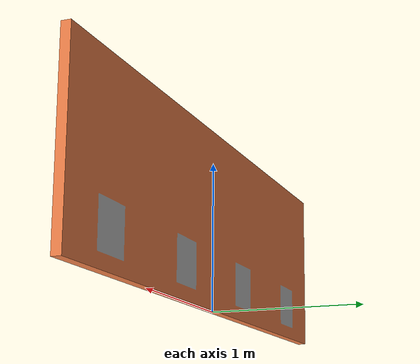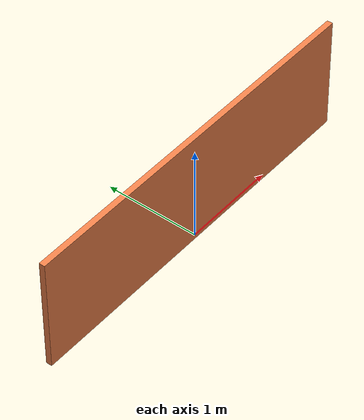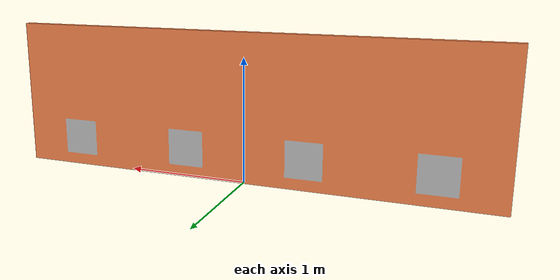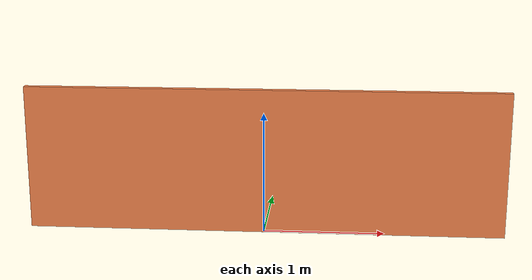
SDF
<?xml version="1.0" ?>
<sdf version="1.5">
<model name="wall">
  <static>true</static>
  <link name="wall_link">

  <visual name="wall">
    <pose>0 0 0 0 0 0</pose>
    <geometry>
      <mesh><uri>model://wall/meshes/wall.dae</uri><scale>1.2 1.2 1.2</scale></mesh>
    </geometry>
  </visual>

  <collision name="wall">
    <pose>0 0 0 0 0 0</pose>
    <geometry>
      <mesh><uri>model://wall/meshes/wall.dae</uri><scale>1.2 1.2 1.2</scale></mesh>
    </geometry>
  </collision>

  </link>
</model>
</sdf>
